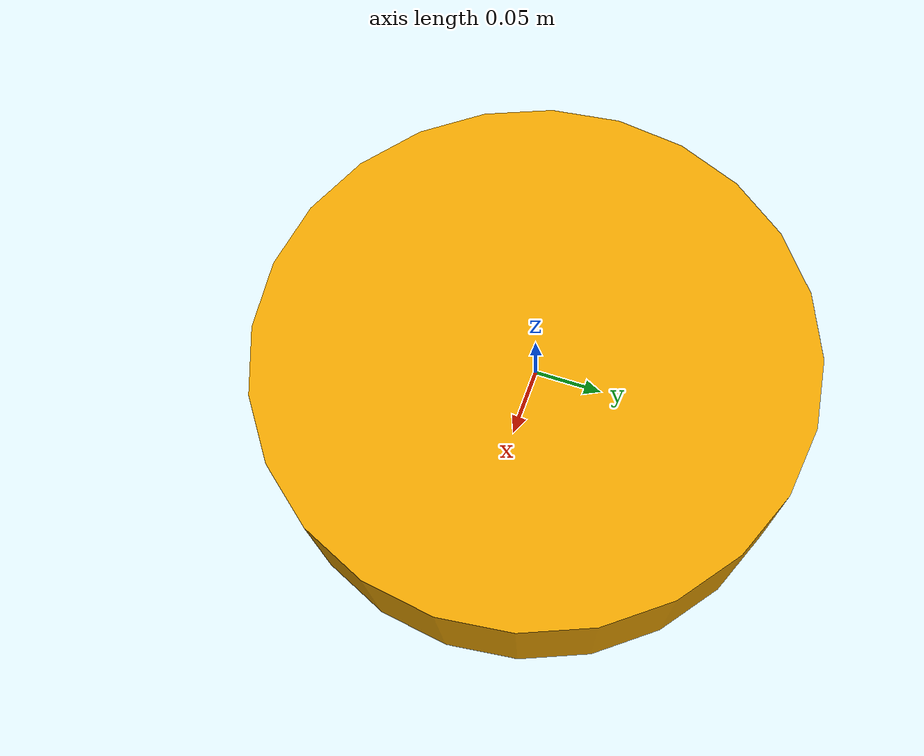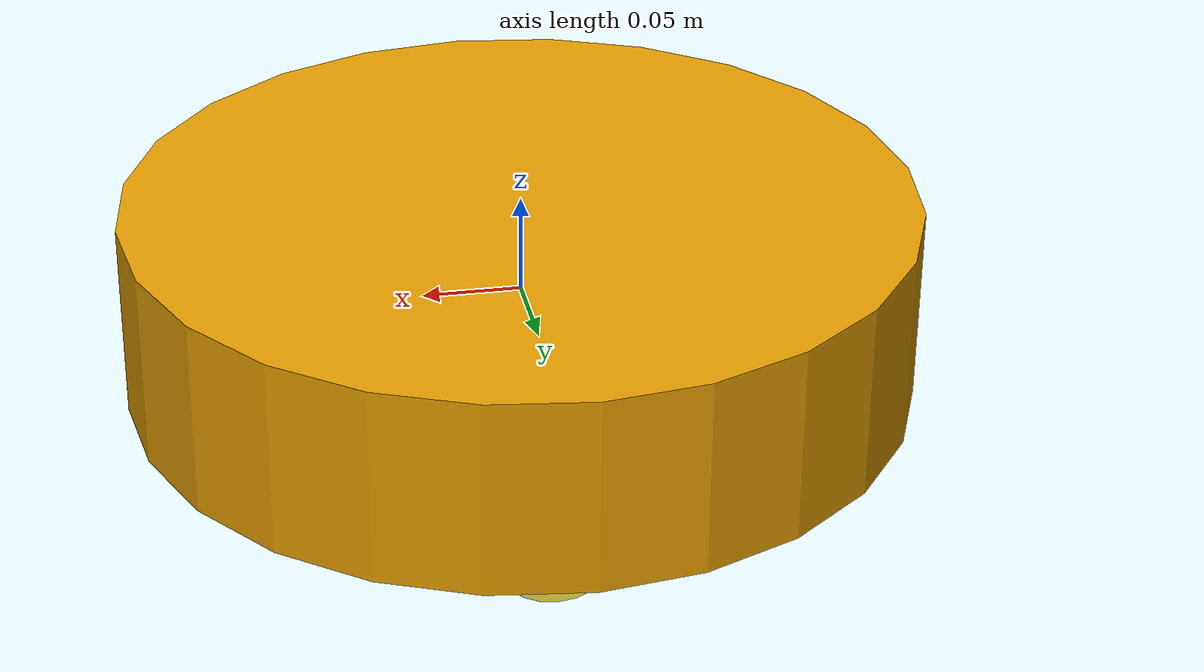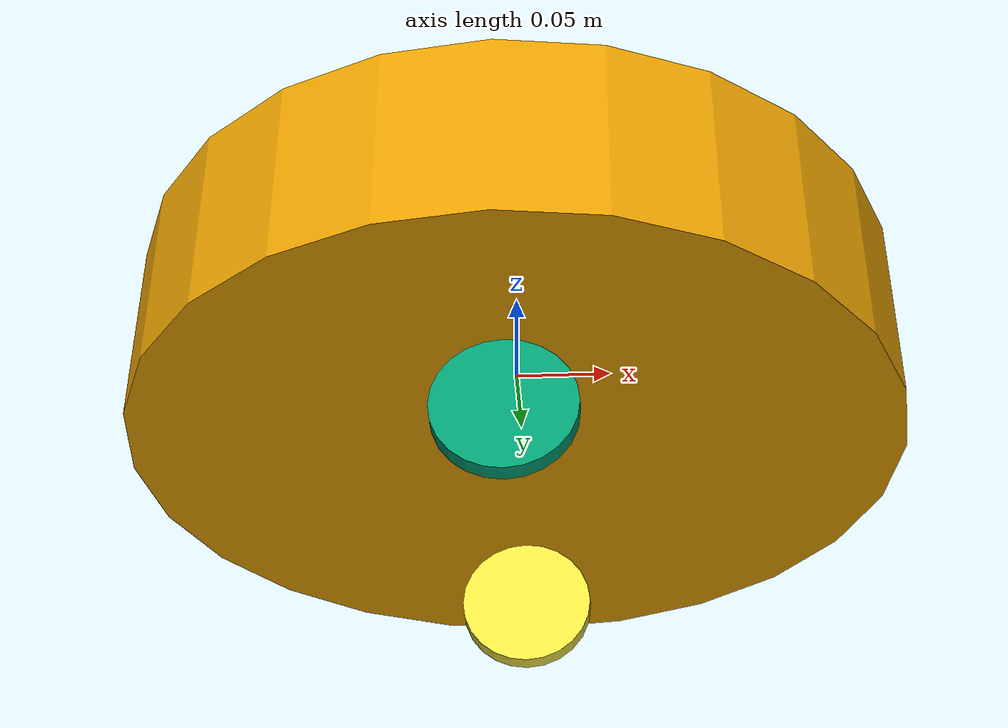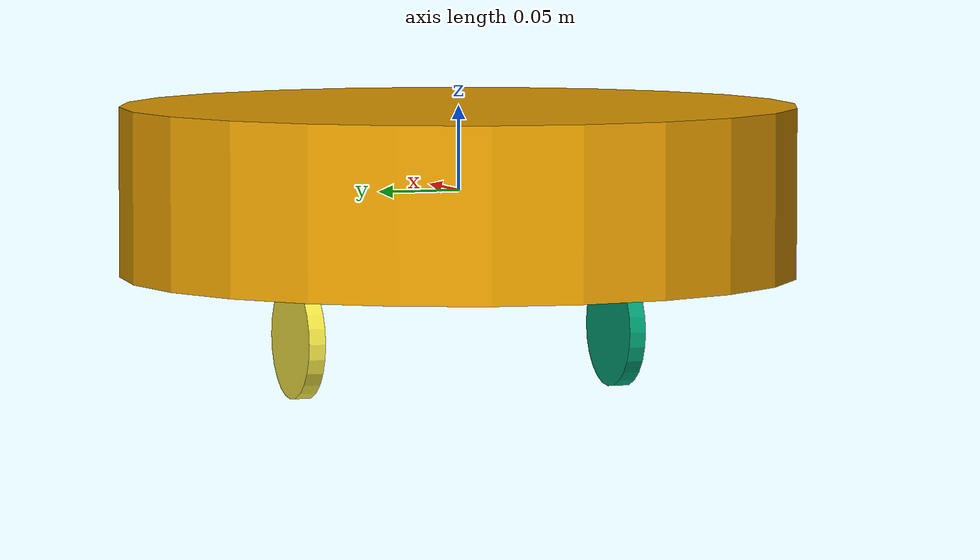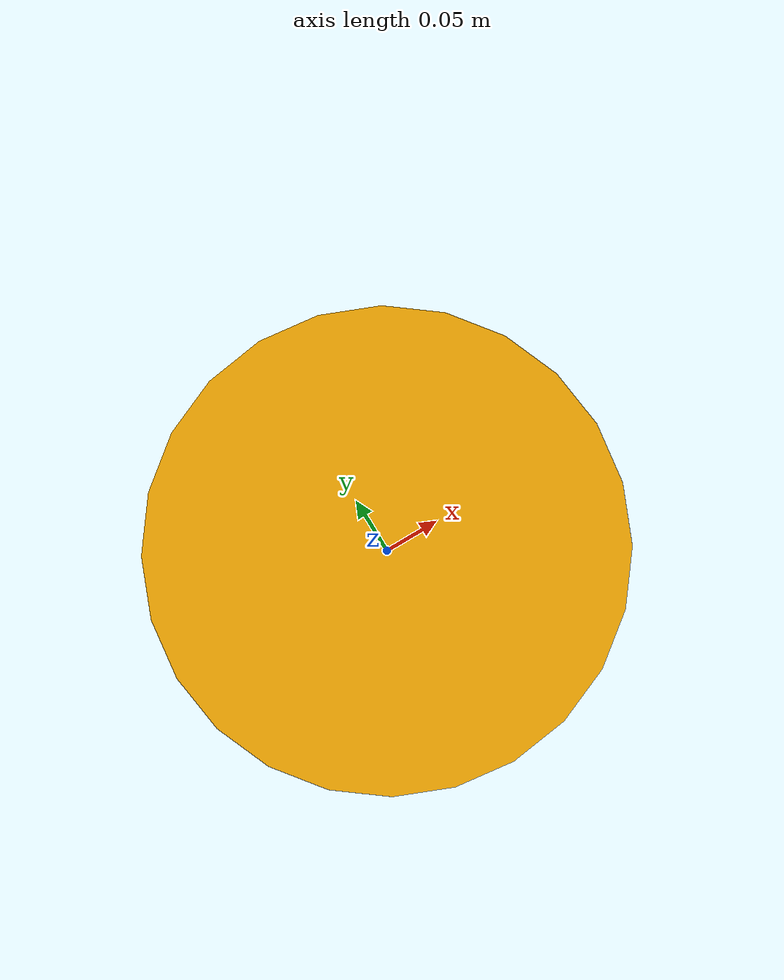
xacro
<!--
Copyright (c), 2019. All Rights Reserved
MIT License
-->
<?xml version="1.0"?>

<robot name="mobile_robot_basic" xmlns:xacro="http://ros.org/wiki/xacro">

    <!--
        Define some Constants
    -->

    <!-- Chassis Constants -->
    <xacro:property name="chassis_height"        value="0.1"     />
    <xacro:property name="chassis_center"        value="0 0 0.3" />
    <xacro:property name="chassis_mass"          value="1.0"     />

    <!-- Drive Wheel Constants -->
    <xacro:property name="wheel_base"            value="0.2"  />
    <xacro:property name="wheel_diameter"        value="0.07" />
    <xacro:property name="wheel_thickness"       value="0.01" />
    <xacro:property name="wheel_mass"            value="0.01" />

    <!-- castor wheel constants -->
    <xacro:property name="castor_wheel_diameter" value="0.05" />
    <xacro:property name="castor_wheel_center"   value="-0.1 0 0.025" />

    <!--
        Define a macro to compute the default inertial value for an object
    -->
    <xacro:macro name="default_inertial" params="mass">
        <inertial>
            <mass value="${mass}" />
            <inertia ixx="1.0" ixy="0.0" ixz="0.0" iyy="1.0" iyz="0.0" izz="1.0" />
        </inertial>
    </xacro:macro>

    <!--
        Robot Chassis Link
    -->
    <link name="chassis">
        <visual>
            <geometry>
                <cylinder radius="${wheel_base}" length="${chassis_height}"/>
                <origin xyz="${chassis_center}" />
            </geometry>
        </visual>
        <collision>
            <geometry>
                <cylinder radius="${wheel_base}" length="${chassis_height}"/>
                <origin xyz="${chassis_center}" />
            </geometry>
        </collision>

        <xacro:default_inertial mass="${chassis_mass}"/>

        <!-- TODO: GAZEBO PLUGIN FOR SENSORS GOES HERE -->
    </link>

    <!--
        Castor Wheel Link and Joint
    -->
    <link name="castor_wheel">
        <visual>
            <origin xyz="${castor_wheel_center}" />
            <geometry>
                <sphere radius="${castor_wheel_diameter/2.0}" />
            </geometry>
        </visual>

        <collision>
            <origin xyz="${castor_wheel_center}" />
            <geometry>
                <sphere radius="${castor_wheel_diameter/2.0}" />
            </geometry>
        </collision>
    </link>
    <joint name="castor_joint" type="fixed">
        <parent link="chassis"      />
        <child  link="castor_wheel" />
        <origin xyz="0 0 -${castor_wheel_diameter/2.0}" rpy="0 0 0"/>
    </joint>

    <!--
        Drive Wheel Links and Joints

        These are defined as an XACRO macro to make them duplicates
        mirror using the 'reflect' param: 1 is one side -1 the other
    -->
    <xacro:macro name="wheel" params="prefix reflect">

        <link name="${prefix}_wheel">
            <visual>
                <origin xyz="0 0 0" rpy="${pi/2} 0 0" />
                <geometry>
                    <cylinder radius="${wheel_diameter/2.0}" length="${wheel_thickness}"/>
                </geometry>
            </visual>

            <collision>
                <origin xyz="0 0 0" rpy="${pi/2} 0 0" />
                <geometry>
                    <cylinder radius="${wheel_diameter/2}" length="${wheel_thickness}"/>
                </geometry>
            </collision>

            <xacro:default_inertial mass="${wheel_mass}"/>
        </link>
        <joint name="${prefix}_wheel_joint" type="continuous" >
            <axis xyz="0 1 0" rpy="0 0 0" />
            <parent link="chassis" />
            <child link="${prefix}_wheel"/>
            <origin xyz="0 ${wheel_base*reflect/2.0} -${wheel_diameter/2+.05}" rpy="0 0 0"/>
        </joint>

        <!-- This block provides the simulator (Gazebo) with information on a few additional
        physical properties. See http://gazebosim.org/tutorials/?tut=ros_urdf for more-->
        <gazebo reference="${prefix}_wheel">
            <mu1 value="200.0"/>
            <mu2 value="100.0"/>
            <kp value="10000000.0" />
            <kd value="1.0" />
        </gazebo>

        <!-- TODO: WHEEL PLUGIN FOR MOTOR GOES HERE -->
    </xacro:macro>

    <!--
        Run the wheel macros to create the left and right wheels
    -->
    <xacro:wheel prefix="left"  reflect="-1" />
    <xacro:wheel prefix="right" reflect="1"  />

</robot>
